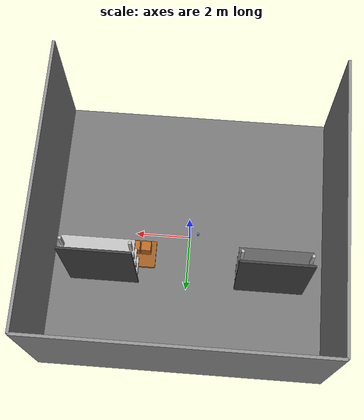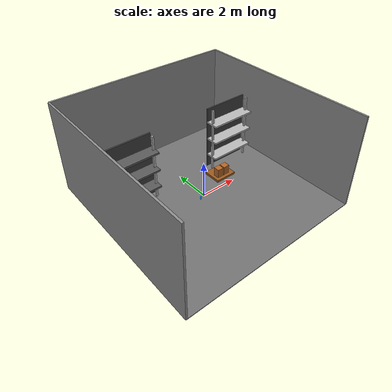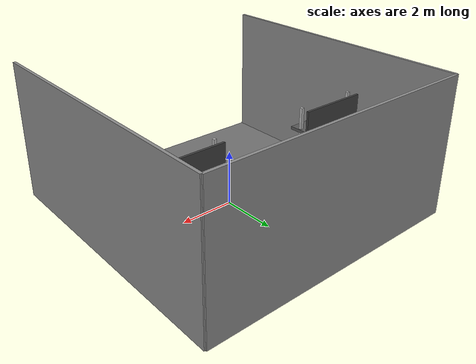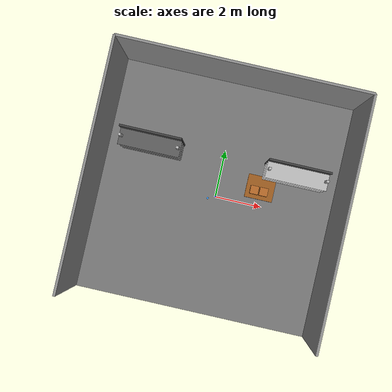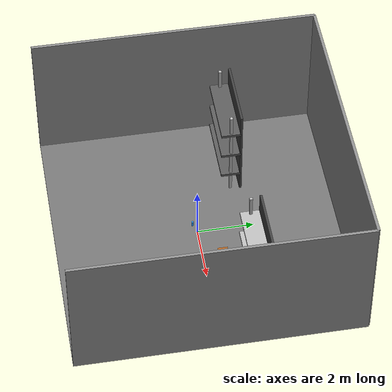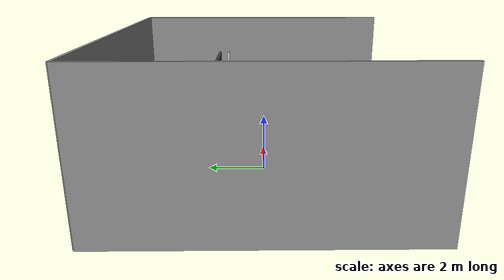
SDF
<?xml version="1.0" ?>

<sdf version="1.10">
  <world name="pick_test">

    <!-- GAZEBO SYSTEMS                                            -->

    <plugin
        name="gz::sim::systems::Physics"
        filename="gz-sim-physics-system"/>

    <plugin
        name="gz::sim::systems::UserCommands"
        filename="gz-sim-user-commands-system"/>

    <plugin
        name="gz::sim::systems::SceneBroadcaster"
        filename="gz-sim-scene-broadcaster-system"/>

    <plugin
        name="gz::sim::systems::Contact"
        filename="gz-sim-contact-system"/>

    <!-- Required for cameras -->
    <plugin
        name="gz::sim::systems::Sensors"
        filename="gz-sim-sensors-system">
      <render_engine>ogre2</render_engine>
    </plugin>

    <!-- LIGHTING                                                  -->

    <light type="directional" name="sun">
      <cast_shadows>true</cast_shadows>
      <pose>0 0 10 0 0 0</pose>

      <diffuse>0.8 0.8 0.8 1</diffuse>
      <specular>0.2 0.2 0.2 1</specular>

      <attenuation>
        <range>1000</range>
        <constant>0.9</constant>
        <linear>0.01</linear>
        <quadratic>0.001</quadratic>
      </attenuation>

      <direction>-0.5 0.5 -1</direction>
    </light>

    <!-- PHYSICS                                                   -->

    <physics name="1ms" type="ode">
      <max_step_size>0.001</max_step_size>
    </physics>

    <gravity>0 0 -9.81</gravity>

    <!-- WAREHOUSE FLOOR                                           -->

    <model name="warehouse_floor">
      <static>true</static>

      <link name="floor_link">

        <collision name="collision">
          <geometry>
            <box>
              <size>10 10 0.05</size>
            </box>
          </geometry>
        </collision>

        <visual name="visual">
          <geometry>
            <box>
              <size>10 10 0.05</size>
            </box>
          </geometry>

          <material>
            <ambient>0.35 0.35 0.35 1</ambient>
            <diffuse>0.45 0.45 0.45 1</diffuse>
            <specular>0.1 0.1 0.1 1</specular>
          </material>
        </visual>

      </link>
    </model>

    <!-- BACK WALL                                                 -->

    <model name="back_wall">
      <static>true</static>

      <pose>0 5 2.5 0 0 0</pose>

      <link name="wall">

        <collision name="collision">
          <geometry>
            <box>
              <size>10 0.10 5</size>
            </box>
          </geometry>
        </collision>

        <visual name="visual">
          <geometry>
            <box>
              <size>10 0.10 5</size>
            </box>
          </geometry>

          <material>
            <ambient>0.45 0.45 0.45 1</ambient>
            <diffuse>0.55 0.55 0.55 1</diffuse>
          </material>
        </visual>

      </link>
    </model>

    <!-- LEFT WALL                                                 -->

    <model name="left_wall">
      <static>true</static>

      <pose>-5 0 2.5 0 0 0</pose>

      <link name="wall">

        <collision name="collision">
          <geometry>
            <box>
              <size>0.10 10 5</size>
            </box>
          </geometry>
        </collision>

        <visual name="visual">
          <geometry>
            <box>
              <size>0.10 10 5</size>
            </box>
          </geometry>

          <material>
            <ambient>0.45 0.45 0.45 1</ambient>
            <diffuse>0.55 0.55 0.55 1</diffuse>
          </material>
        </visual>

      </link>
    </model>

    <!-- RIGHT WALL                                                -->

    <model name="right_wall">
      <static>true</static>

      <pose>5 0 2.5 0 0 0</pose>

      <link name="wall">

        <collision name="collision">
          <geometry>
            <box>
              <size>0.10 10 5</size>
            </box>
          </geometry>
        </collision>

        <visual name="visual">
          <geometry>
            <box>
              <size>0.10 10 5</size>
            </box>
          </geometry>

          <material>
            <ambient>0.45 0.45 0.45 1</ambient>
            <diffuse>0.55 0.55 0.55 1</diffuse>
          </material>
        </visual>

      </link>
    </model>

    <!-- LEFT WAREHOUSE RACK                                       -->

    <model name="left_rack">
      <static>true</static>

      <pose>-3.0 1.5 0 0 0 0</pose>

      <link name="rack">

        <!-- Back support -->
        <visual name="back">
          <pose>0 0.35 1.8 0 0 0</pose>
          <geometry>
            <box>
              <size>2.5 0.08 3.6</size>
            </box>
          </geometry>
          <material>
            <ambient>0.15 0.15 0.15 1</ambient>
            <diffuse>0.25 0.25 0.25 1</diffuse>
          </material>
        </visual>

        <collision name="back_collision">
          <pose>0 0.35 1.8 0 0 0</pose>
          <geometry>
            <box>
              <size>2.5 0.08 3.6</size>
            </box>
          </geometry>
        </collision>

        <!-- Shelf 1 -->
        <visual name="shelf1">
          <pose>0 0 0.8 0 0 0</pose>
          <geometry>
            <box>
              <size>2.5 0.7 0.10</size>
            </box>
          </geometry>
          <material>
            <ambient>0.25 0.25 0.25 1</ambient>
            <diffuse>0.35 0.35 0.35 1</diffuse>
          </material>
        </visual>

        <collision name="shelf1_collision">
          <pose>0 0 0.8 0 0 0</pose>
          <geometry>
            <box>
              <size>2.5 0.7 0.10</size>
            </box>
          </geometry>
        </collision>

        <!-- Shelf 2 -->
        <visual name="shelf2">
          <pose>0 0 1.8 0 0 0</pose>
          <geometry>
            <box>
              <size>2.5 0.7 0.10</size>
            </box>
          </geometry>
          <material>
            <ambient>0.25 0.25 0.25 1</ambient>
            <diffuse>0.35 0.35 0.35 1</diffuse>
          </material>
        </visual>

        <collision name="shelf2_collision">
          <pose>0 0 1.8 0 0 0</pose>
          <geometry>
            <box>
              <size>2.5 0.7 0.10</size>
            </box>
          </geometry>
        </collision>

        <!-- Shelf 3 -->
        <visual name="shelf3">
          <pose>0 0 2.8 0 0 0</pose>
          <geometry>
            <box>
              <size>2.5 0.7 0.10</size>
            </box>
          </geometry>
          <material>
            <ambient>0.25 0.25 0.25 1</ambient>
            <diffuse>0.35 0.35 0.35 1</diffuse>
          </material>
        </visual>

        <collision name="shelf3_collision">
          <pose>0 0 2.8 0 0 0</pose>
          <geometry>
            <box>
              <size>2.5 0.7 0.10</size>
            </box>
          </geometry>
        </collision>

        <!-- Vertical posts -->
        <visual name="post1">
          <pose>-1.15 0 1.8 0 0 0</pose>
          <geometry>
            <box>
              <size>0.10 0.10 3.6</size>
            </box>
          </geometry>
        </visual>

        <visual name="post2">
          <pose>1.15 0 1.8 0 0 0</pose>
          <geometry>
            <box>
              <size>0.10 0.10 3.6</size>
            </box>
          </geometry>
        </visual>

      </link>
    </model>

    <!-- RIGHT WAREHOUSE RACK                                      -->

    <model name="right_rack">
      <static>true</static>

      <pose>3.0 1.5 0 0 0 0</pose>

      <link name="rack">

        <!-- Back -->
        <visual name="back">
          <pose>0 0.35 1.8 0 0 0</pose>
          <geometry>
            <box>
              <size>2.5 0.08 3.6</size>
            </box>
          </geometry>
          <material>
            <ambient>0.15 0.15 0.15 1</ambient>
            <diffuse>0.25 0.25 0.25 1</diffuse>
          </material>
        </visual>

        <collision name="back_collision">
          <pose>0 0.35 1.8 0 0 0</pose>
          <geometry>
            <box>
              <size>2.5 0.08 3.6</size>
            </box>
          </geometry>
        </collision>

        <!-- Shelves -->
        <visual name="shelf1">
          <pose>0 0 0.8 0 0 0</pose>
          <geometry>
            <box>
              <size>2.5 0.7 0.10</size>
            </box>
          </geometry>
        </visual>

        <collision name="shelf1_collision">
          <pose>0 0 0.8 0 0 0</pose>
          <geometry>
            <box>
              <size>2.5 0.7 0.10</size>
            </box>
          </geometry>
        </collision>

        <visual name="shelf2">
          <pose>0 0 1.8 0 0 0</pose>
          <geometry>
            <box>
              <size>2.5 0.7 0.10</size>
            </box>
          </geometry>
        </visual>

        <collision name="shelf2_collision">
          <pose>0 0 1.8 0 0 0</pose>
          <geometry>
            <box>
              <size>2.5 0.7 0.10</size>
            </box>
          </geometry>
        </collision>

        <visual name="shelf3">
          <pose>0 0 2.8 0 0 0</pose>
          <geometry>
            <box>
              <size>2.5 0.7 0.10</size>
            </box>
          </geometry>
        </visual>

        <collision name="shelf3_collision">
          <pose>0 0 2.8 0 0 0</pose>
          <geometry>
            <box>
              <size>2.5 0.7 0.10</size>
            </box>
          </geometry>
        </collision>

        <!-- Posts -->
        <visual name="post1">
          <pose>-1.15 0 1.8 0 0 0</pose>
          <geometry>
            <box>
              <size>0.10 0.10 3.6</size>
            </box>
          </geometry>
        </visual>

        <visual name="post2">
          <pose>1.15 0 1.8 0 0 0</pose>
          <geometry>
            <box>
              <size>0.10 0.10 3.6</size>
            </box>
          </geometry>
        </visual>

      </link>
    </model>

    <!-- PALLET                                                   -->

    <model name="pallet">
      <static>true</static>

      <pose>1.8 0.8 0.08 0 0 0</pose>

      <link name="pallet_link">

        <visual name="top">
          <geometry>
            <box>
              <size>1.2 1.0 0.15</size>
            </box>
          </geometry>

          <material>
            <ambient>0.45 0.25 0.08 1</ambient>
            <diffuse>0.60 0.35 0.12 1</diffuse>
          </material>
        </visual>

        <collision name="collision">
          <geometry>
            <box>
              <size>1.2 1.0 0.15</size>
            </box>
          </geometry>
        </collision>

      </link>
    </model>

    <!-- BOXES ON PALLET                                          -->

    <model name="box_1">
      <static>true</static>
      <pose>1.55 0.65 0.40 0 0 0</pose>

      <link name="link">

        <visual name="visual">
          <geometry>
            <box>
              <size>0.35 0.35 0.50</size>
            </box>
          </geometry>

          <material>
            <ambient>0.55 0.30 0.10 1</ambient>
            <diffuse>0.70 0.40 0.15 1</diffuse>
          </material>
        </visual>

        <collision name="collision">
          <geometry>
            <box>
              <size>0.35 0.35 0.50</size>
            </box>
          </geometry>
        </collision>

      </link>
    </model>

    <model name="box_2">
      <static>true</static>
      <pose>1.95 0.65 0.40 0 0 0</pose>

      <link name="link">

        <visual name="visual">
          <geometry>
            <box>
              <size>0.35 0.35 0.50</size>
            </box>
          </geometry>

          <material>
            <ambient>0.55 0.30 0.10 1</ambient>
            <diffuse>0.70 0.40 0.15 1</diffuse>
          </material>
        </visual>

        <collision name="collision">
          <geometry>
            <box>
              <size>0.35 0.35 0.50</size>
            </box>
          </geometry>
        </collision>

      </link>
    </model>

    <!-- EXISTING CYLINDER                                        -->

    <model name="cylinder_1">

      <pose>-0.30 -0.12 0.10 0 0 0</pose>

      <link name="link">

        <inertial>
          <mass>0.2</mass>

          <inertia>
            <ixx>0.0008667</ixx>
            <iyy>0.0008667</iyy>
            <izz>0.00064</izz>
            <ixy>0</ixy>
            <ixz>0</ixz>
            <iyz>0</iyz>
          </inertia>
        </inertial>

        <collision name="collision">
          <geometry>
            <cylinder>
              <radius>0.04</radius>
              <length>0.20</length>
            </cylinder>
          </geometry>
        </collision>

        <visual name="visual">

          <geometry>
            <cylinder>
              <radius>0.04</radius>
              <length>0.20</length>
            </cylinder>
          </geometry>

          <material>
            <ambient>0.1 0.4 0.8 1</ambient>
            <diffuse>0.2 0.6 1.0 1</diffuse>
            <specular>0.1 0.1 0.1 1</specular>
          </material>

        </visual>

      </link>
    </model>

  </world>
</sdf>
